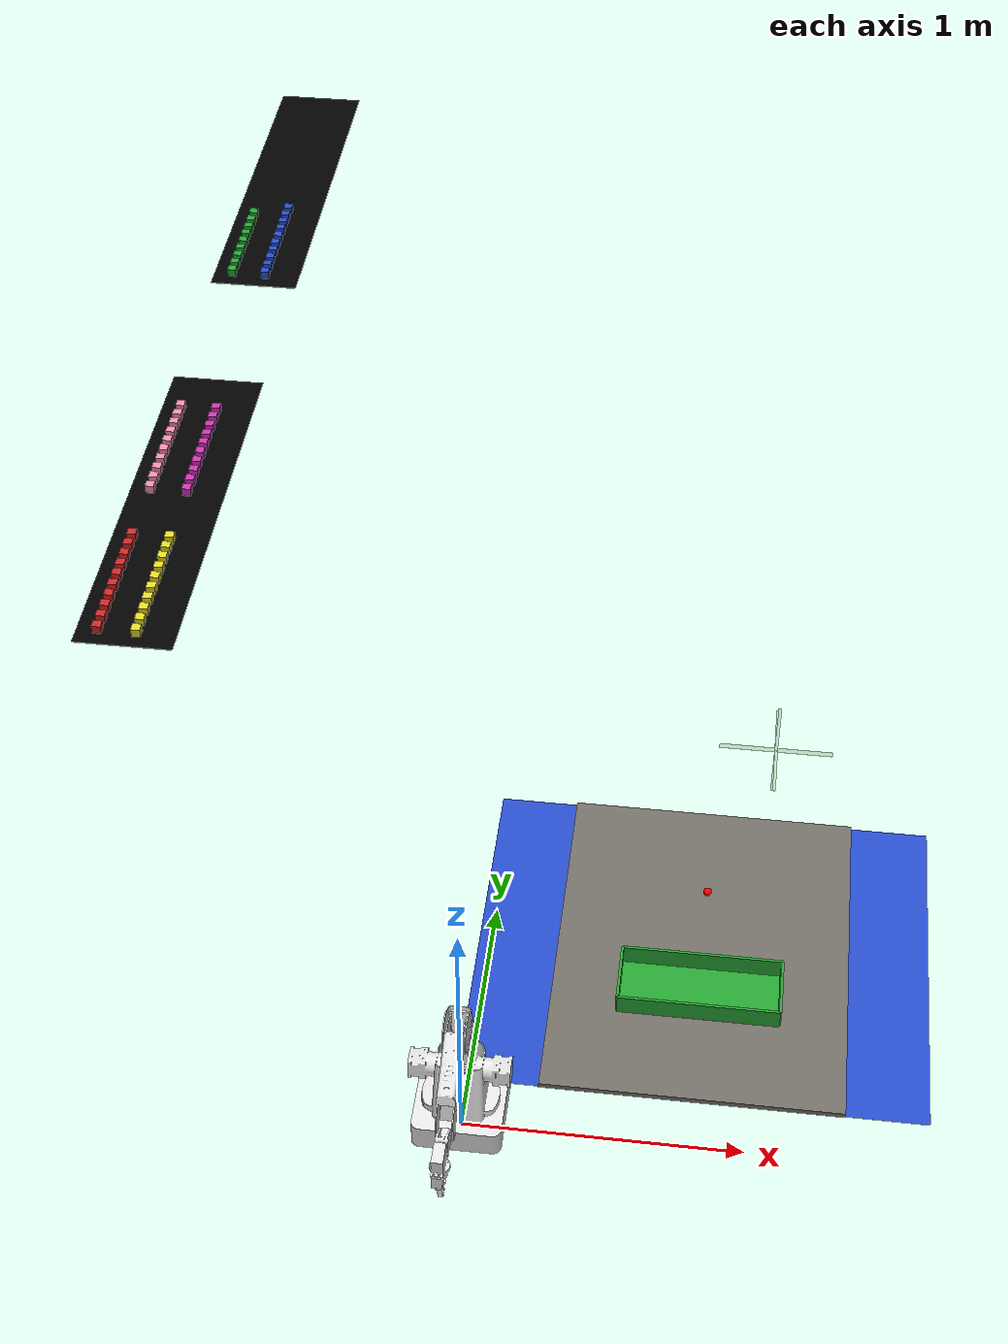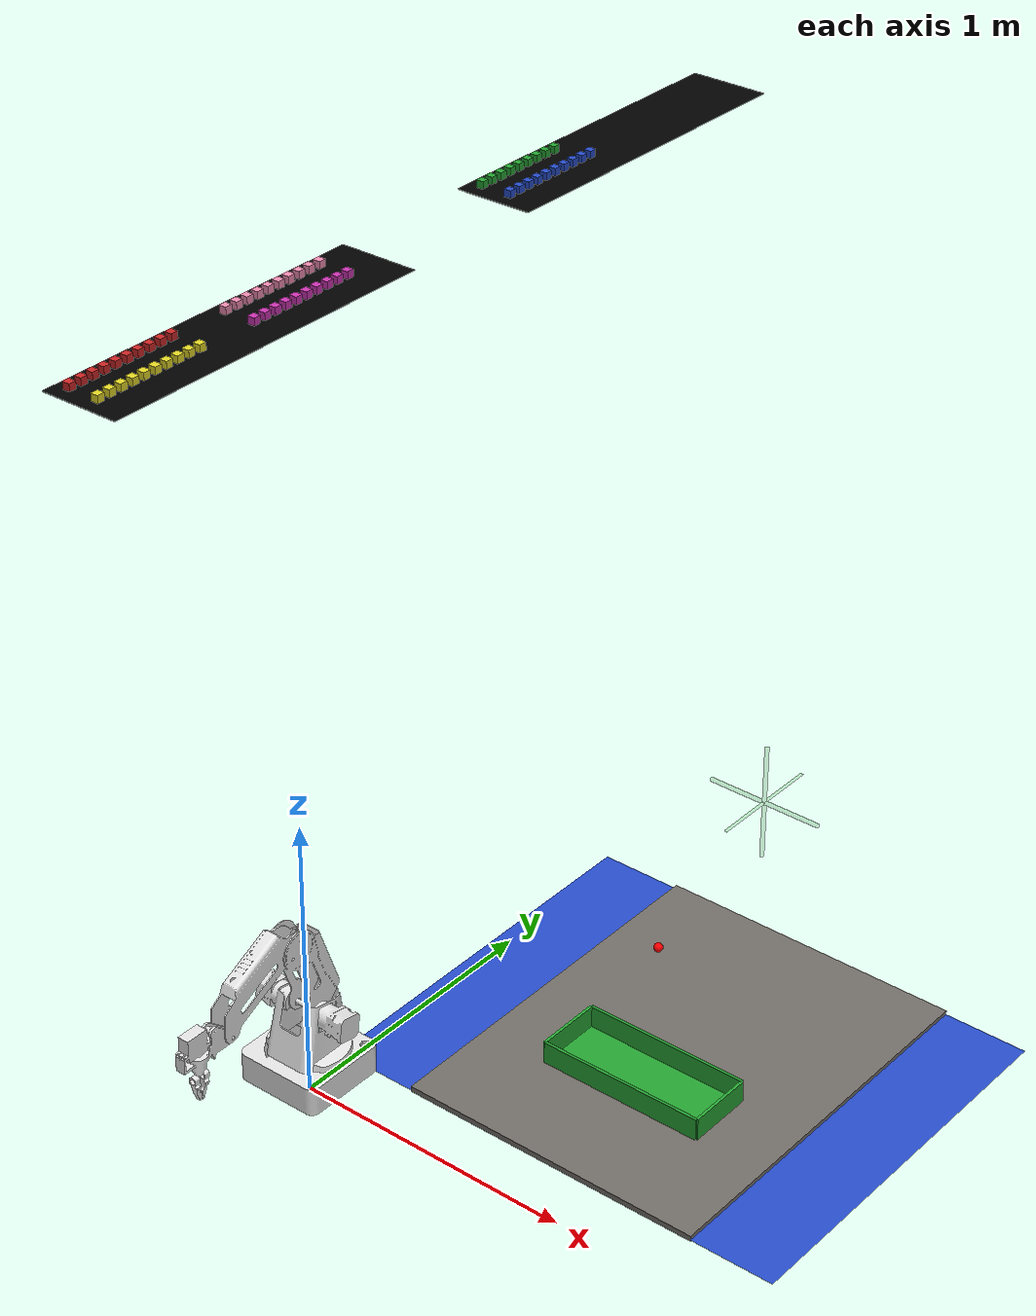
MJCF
<?xml version="1.0" encoding="utf-8"?>
<mujoco>
	<compiler angle="radian" coordinate="local" meshdir="../stls/dobot" texturedir="../textures"></compiler>
	<option timestep="0.002">
		<flag warmstart="enable"></flag>
	</option>
	<visual>
		<quality shadowsize="4096"></quality>
	</visual>

	<size njmax="8500" nconmax="4500"></size>

	<include file="shared_pick.xml"></include>

	<worldbody>

		<include file="base.xml"></include>

		<include file="robot_pick.xml"></include>

		<body name="object0" pos="0.025 0.025 0.025">
			<joint name="object0:joint" type="free" damping="0.01"></joint>
			<inertial diaginertia="5.2869 5.2236 5.9868" mass="0.8" pos="0 0 0"></inertial>
			<geom size="0.0145 0.0145 0.0145" type="box" condim="4" name="object0" material="blue_block_mat" mass="0.8" ></geom>
			<site name="site:object0" pos="0 0 0" size="0.012 0.012 0.012" rgba="1 0 0 1" type="sphere"></site>
		</body>

		<include file="clutter.xml"></include>

	</worldbody>

	<actuator>
		<position ctrllimited="true" ctrlrange="0 0.025" joint="dobot:r_gripper_joint" kp="30000" name="dobot:r_gripper_joint"></position>
		<position ctrllimited="true" ctrlrange="-0.025 0" joint="dobot:l_gripper_joint" kp="30000" name="dobot:l_gripper_joint"></position>
	</actuator>
</mujoco>

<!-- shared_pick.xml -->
<mujoco>
    <asset>
        <texture type="skybox" builtin="gradient" rgb1="0 0 0" rgb2="0.5 0.5 1" width="32" height="32"></texture>
        <texture name="texture_block" file="block.png" gridsize="3 4" gridlayout=".U..LFRB.D.."></texture>
        <texture name="red_block" file="block_red.png" gridsize="3 4" gridlayout=".U..LFRB.D.."></texture>
        <texture name="yellow_block" file="block_yellow.png" gridsize="3 4" gridlayout=".U..LFRB.D.."></texture>
        <texture name="green_block" file="block_green.png" gridsize="3 4" gridlayout=".U..LFRB.D.."></texture>
        <texture name="blue_block" file="block_blue.png" gridsize="3 4" gridlayout=".U..LFRB.D.."></texture>
        <texture name="pink_block" file="block_pink.png" gridsize="3 4" gridlayout=".U..LFRB.D.."></texture>
        <texture name="magenta_block" file="block_magenta.png" gridsize="3 4" gridlayout=".U..LFRB.D.."></texture>
        <texture name="dark_blue_block" file="block_dark_blue.png" gridsize="3 4" gridlayout=".U..LFRB.D.."></texture>
        <texture name="dark_green_block" file="block_dark_green.png" gridsize="3 4" gridlayout=".U..LFRB.D.."></texture>
        <texture name="arm_tex" file="arm.png" type="2d"></texture>
        <texture name="base_tex" file="base.png" type="2d"></texture>
        <texture name="base_blue_tex" file="base_blue.png" type="2d"></texture>
        <texture name="base_green_tex" file="base_green.png" type="2d"></texture>
        <texture name="gripper_tex" file="gripper.png" type="2d"></texture>

        <material name="table_mat" specular="0" shininess="0.5" reflectance="0" rgba="0.6 0.6 0.6 1" texture="base_tex"></material>
        <material name="floor_mat" specular="0" shininess="0.5" reflectance="0" rgba="1 1 1 1" texture="base_blue_tex"></material>
        <material name="tray_mat" specular="0" shininess="0.5" reflectance="0" rgba="1 1 1 1" texture="base_green_tex"></material>
        <material name="block_mat" specular="0" shininess="0.5" reflectance="0" rgba="1 1 1 1" texture="texture_block"></material>
        <material name="red_block_mat" specular="0" shininess="0.5" reflectance="0" rgba="1 1 1 1" texture="red_block"></material>
        <material name="yellow_block_mat" specular="0" shininess="0.5" reflectance="0" rgba="1 1 1 1" texture="yellow_block"></material>
        <material name="green_block_mat" specular="0" shininess="0.5" reflectance="0" rgba="1 1 1 1" texture="green_block"></material>
        <material name="blue_block_mat" specular="0" shininess="0.5" reflectance="0" rgba="1 1 1 1" texture="blue_block"></material>
        <material name="dark_blue_block_mat" specular="0" shininess="0.5" reflectance="0" rgba="1 1 1 1" texture="dark_blue_block"></material>
        <material name="dark_green_block_mat" specular="0" shininess="0.5" reflectance="0" rgba="1 1 1 1" texture="dark_green_block"></material>
        <material name="pink_block_mat" specular="0" shininess="0.5" reflectance="0" rgba="1 1 1 1" texture="pink_block"></material>
        <material name="magenta_block_mat" specular="0" shininess="0.5" reflectance="0" rgba="1 1 1 1" texture="magenta_block"></material>
        <material name="puck_mat" specular="0" shininess="0.5" reflectance="0" rgba="0.2 0.2 0.2 1" texture="base_tex"></material>
        <material name="dobot_mat" shininess="0.03" specular="0.4" rgba ="1 1 1 0"></material>
        <material name="arm_mat" shininess="0.03" specular="0.4" texture="arm_tex"></material>
        <material name="gripper_mat" shininess="0.03" specular="0.4" texture="gripper_tex"></material>

        <mesh file="fpart1.stl" name="dobot:rear_arm_link" scale="0.002 0.002 0.002"></mesh>
		<mesh file="fpart2.stl" name="dobot:front_arm_link" scale="0.002 0.002 0.002"></mesh>
		<mesh file="fpart3.stl" name="dobot:lift_link" scale="0.002 0.002 0.002"></mesh>
		<mesh file="fpart4.stl" name="dobot:base_link" scale="0.002 0.002 0.002"></mesh>
        <mesh file="gripper_base.stl" name="dobot:gripper_link" scale="0.002 0.002 0.002"></mesh>
		<mesh file="leftArm.stl" name="dobot:l_gripper_link" scale="0.002 0.002 0.002"></mesh>
		<mesh file="rightArm.stl" name="dobot:r_gripper_link" scale="0.002 0.002 0.002"></mesh>

    </asset>

    <equality>
        <weld body1="dobot:mocap" body2="dobot:gripper_link" solimp="0.9 0.95 0.001" solref="0.02 1"></weld>
    </equality>

    <default>
        <default class="dobot:fetch">
            <geom margin="0.001" material="dobot_mat" rgba="1 1 1 1" solimp="0.99 0.99 0.01" solref="0.01 1" type="mesh" user="0" group="1"></geom>
            <joint armature="1" damping="50" frictionloss="0" stiffness="0"></joint>

            <default class="dobot:fetchGripper">
                <geom condim="4" margin="0.001" type="box" user="0" rgba="0.356 0.361 0.376 1.0"></geom>
                <joint armature="100" damping="1000" limited="true" solimplimit="0.99 0.999 0.01" solreflimit="0.01 1" type="slide"></joint>
            </default>

            <default class="dobot:white">
                <geom rgba="0.9 0.9 0.9 1.0"></geom>
            </default>
            <default class="dobot:black">
                <geom rgba="0.2 0.2 0.2 1.0"></geom>
            </default>
        </default>
    </default>
</mujoco>

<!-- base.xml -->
<mujoco>
    <geom name="floor0" pos="0.8 0.9 0" size="0.85 0.70 1" type="plane" condim="3" material="floor_mat"></geom>
    <body name="floor0" pos="0.8 0.75 0">
        <site name="target0" pos="0 0 0.5" size="0.015" rgba="1 0 0 1" type="sphere"></site>
        <body pos="0 0.15 0" name="table0">
            <geom name="table0" size="0.55 0.7 0.01" type="box" mass="2000" material="table_mat"></geom>
            <body name="tray" pos = "0 -0.215 0.01">
                <geom name="tray_base" size="0.300 0.120 0.001" type="box" mass="300" material="tray_mat"></geom>
                <geom size="0.300 0.005 0.055" type="box" mass="300" pos="0 0.120 0.025" material="tray_mat"></geom>
                <geom size="0.300 0.005 0.055" type="box" mass="300" pos="0 -0.120 0.025" material="tray_mat"></geom>
                <geom size="0.005 0.120 0.055" type="box" mass="300" pos="0.300 0 0.025" material="tray_mat"></geom>
                <geom size="0.005 0.120 0.055" type="box" mass="300" pos="-0.300 0 0.025" material="tray_mat"></geom>
            </body>
            <camera euler="0.78 0 0" fovy="40" name="camera0" pos="0 -1 1" mode="targetbody" target="tray"></camera>
        </body>
    </body>
    <light directional="false" ambient="0.2 0.2 0.2" diffuse="0.8 0.8 0.8" specular="0.3 0.3 0.3" castshadow="false" pos="0.8 0.9 3" name="light0"></light>

</mujoco>

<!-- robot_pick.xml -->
<mujoco>
	<body mocap="true" name="dobot:mocap" pos="1 1 1">
		<geom conaffinity="0" contype="0" pos="0 0 0" rgba="0 0.5 0 0.2" size="0.005 0.005 0.005" type="box"></geom>
		<geom conaffinity="0" contype="0" pos="0 0 0" rgba="0 0.5 0 0.2" size="0.2 0.005 0.005" type="box"></geom>
		<geom conaffinity="0" contype="0" pos="0 0 0" rgba="0 0.5 0 0.2" size="0.005 0.2 0.001" type="box"></geom>
		<geom conaffinity="0" contype="0" pos="0 0 0" rgba="0 0.5 0 0.2" size="0.005 0.005 0.2" type="box"></geom>

	</body>
	<body childclass="dobot:fetch" name="dobot:base_link" pos="0 0 0.1" euler="0 0 0">
		<joint armature="0.0001" axis="1 0 0" damping="1e+11" name="dobot:slide0" pos="0 0 0" type="slide"></joint>
		<joint armature="0.0001" axis="0 1 0" damping="1e+11" name="dobot:slide1" pos="0 0 0" type="slide"></joint>
		<joint armature="0.0001" axis="0 0 1" damping="1e+11" name="dobot:slide2" pos="0 0 0" type="slide"></joint>
			<inertial diaginertia="1.2869 1.2236 0.9868" mass="1.5" pos="0 0 0"></inertial>
			<geom mesh="dobot:base_link" name="dobot:base_link" material="arm_mat" class="dobot:white"></geom>
			<body name="dobot:lift_link" pos="0 0 0.066" euler="0 0 0">
				<inertial diaginertia="1.2869 1.2236 0.9868" mass="0.5" pos="0 0 0"></inertial>
				<geom mesh="dobot:lift_link" name="dobot:lift_link" material="arm_mat" class="dobot:white"></geom>
				<joint name="dobot:base_pan" type="hinge" pos="0 0 0" axis="0 0 1" range="-1.57 1.57" limited="true"/>
				<body name="dobot:rear_arm_link" pos="0 0 0.16" euler="0 0 0">
					<inertial diaginertia="1.2869 1.2236 0.9868" mass="0.85" pos="0 0 0" ></inertial>
					<geom mesh="dobot:rear_arm_link" name="dobot:rear_arm_link" pos = "0 0 0" material="arm_mat" class="dobot:white"></geom>
					<joint name="dobot:base_tilt" type="hinge" pos="0 0 0" axis="1 0 0" range="0 1.4835" limited="true"/>
					<body name="dobot:front_arm_link" pos="0 -0.098 0.246" euler="0 0 0">
						<inertial diaginertia="1.2869 1.2236 0.9868" mass="0.85" pos="0 0 0"></inertial>
						<geom mesh="dobot:front_arm_link" name="dobot:front_arm_link" pos = "0 0 0" material="arm_mat" class="dobot:white"></geom>
						<joint name="dobot:elbow_flex" type="hinge" pos="0 0 0" axis="1 0 0" range="-1.658 0.174" limited="true"/>
						<body name="dobot:gripper_link" pos="0 -0.26 -0.136" euler="0 0 0">
							<inertial diaginertia="1.2869 1.2236 0.9868" mass="0.3294" pos="0 0 0"></inertial>
							<geom mesh="dobot:gripper_link" name="dobot:gripper_link" pos = "0 0 0" material="gripper_mat" class="dobot:white"></geom>
							<joint name="dobot:wrist_flex" type="hinge" pos="0 0 0" axis="1 0 0"/>
							<body name="dobot:gripper">
								<inertial diaginertia="1.2869 1.2236 0.9868" mass="0.1" pos="0 0 0"></inertial>
								<joint name="dobot:gripper_rot" type="hinge" pos="0 -0.123 -0.12" axis="0 0 1"/>
								<site name="dobot:grip" pos="0 -0.123 -0.153" rgba="0 0 0 0" size="0.02 0.02 0.02"></site>
								<body childclass="dobot:fetchGripper" name="dobot:l_gripper_link" pos="0 -0.1425 -0.09" euler="0 0 0">
									<inertial diaginertia="1.2869 1.2236 0.9868" mass="0.3294" pos="0 0 0"></inertial>
									<geom mesh="dobot:l_gripper_link" name="dobot:l_gripper_link" pos = "0 0 0" material="gripper_mat" class="dobot:white"></geom>
									<joint name="dobot:l_gripper_joint" type="slide" axis="0 1 0" limited="true" range="-0.025 0"/>
								</body>
								<body childclass="dobot:fetchGripper" name="dobot:r_gripper_link" pos="0 -0.1025 -0.09" euler="0 0 0">
									<inertial diaginertia="1.2869 1.2236 0.9868" mass="0.3294" pos="0 0 0"></inertial>
									<geom mesh="dobot:r_gripper_link" name="dobot:r_gripper_link" pos = "0 0 0" material="gripper_mat" class="dobot:white"></geom>
									<joint name="dobot:r_gripper_joint" type="slide" axis="0 1 0" limited="true" range = "0 0.025"/>
								</body>
							</body>
						</body>
					</body>
				</body>
			</body>
		</body>

</mujoco>

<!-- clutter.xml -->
<mujoco>
		<body pos = "-1.0625 0.9 2">
			<geom size="0.16 0.70 0.001" type="box" mass="300" rgba="0 0 0 1"></geom>
		</body>
		<body pos = "-1.0625 2.9 2">
			<geom size="0.16 0.70 0.001" type="box" mass="300" rgba="0 0 0 1"></geom>
		</body>
        <body name="object1" pos="-1.025 0.250 2.025">
			<joint name="object1:joint" type="free" damping="0.01"></joint>
			<geom size="0.0145 0.0145 0.0145" type="box" condim="3" name="object1" material="yellow_block_mat" mass="0.8" ></geom>
            <inertial diaginertia="5.2869 5.2236 5.9868" mass="0.8" pos="0 0 0"></inertial>
			<site name="site:object1" pos="0 0 0" size="0.0125 0.0125 0.0125" rgba="1 0 0 1" type="sphere"></site>
		</body>
		<body name="object2" pos="-1.025 0.300 2.025">
			<joint name="object2:joint" type="free" damping="0.01"></joint>
			<geom size="0.0145 0.0145 0.0145" type="box" condim="3" name="object2" material="yellow_block_mat" mass="0.8" ></geom>
            <inertial diaginertia="5.2869 5.2236 5.9868" mass="0.8" pos="0 0 0"></inertial>
			<site name="site:object2" pos="0 0 0" size="0.0125 0.0125 0.0125" rgba="1 0 0 1" type="sphere"></site>
		</body>
		<body name="object3" pos="-1.025 0.350 2.025">
			<joint name="object3:joint" type="free" damping="0.01"></joint>
			<geom size="0.0145 0.0145 0.0145" type="box" condim="3" name="object3" material="yellow_block_mat" mass="0.8" ></geom>
            <inertial diaginertia="5.2869 5.2236 5.9868" mass="0.8" pos="0 0 0"></inertial>
			<site name="site:object3" pos="0 0 0" size="0.0125 0.0125 0.0125" rgba="1 0 0 1" type="sphere"></site>
		</body>
		<body name="object4" pos="-1.025 0.400 2.025">
			<joint name="object4:joint" type="free" damping="0.01"></joint>
			<geom size="0.0145 0.0145 0.0145" type="box" condim="3" name="object4" material="yellow_block_mat" mass="0.8" ></geom>
            <inertial diaginertia="5.2869 5.2236 5.9868" mass="0.8" pos="0 0 0"></inertial>
			<site name="site:object4" pos="0 0 0" size="0.0125 0.0125 0.0125" rgba="1 0 0 1" type="sphere"></site>
		</body>
		<body name="object5" pos="-1.025 0.450 2.025">
			<joint name="object5:joint" type="free" damping="0.01"></joint>
			<geom size="0.0145 0.0145 0.0145" type="box" condim="3" name="object5" material="yellow_block_mat" mass="0.8" ></geom>
            <inertial diaginertia="5.2869 5.2236 5.9868" mass="0.8" pos="0 0 0"></inertial>
			<site name="site:object5" pos="0 0 0" size="0.0125 0.0125 0.0125" rgba="1 0 0 1" type="sphere"></site>
		</body>
		<body name="object6" pos="-1.025 0.500 2.025">
			<joint name="object6:joint" type="free" damping="0.01"></joint>
			<geom size="0.0145 0.0145 0.0145" type="box" condim="3" name="object6" material="yellow_block_mat" mass="0.8" ></geom>
            <inertial diaginertia="5.2869 5.2236 5.9868" mass="0.8" pos="0 0 0"></inertial>
			<site name="site:object6" pos="0 0 0" size="0.0125 0.0125 0.0125" rgba="1 0 0 1" type="sphere"></site>
		</body>
		<body name="object7" pos="-1.025 0.550 2.025">
			<joint name="object7:joint" type="free" damping="0.01"></joint>
			<geom size="0.0145 0.0145 0.0145" type="box" condim="3" name="object7" material="yellow_block_mat" mass="0.8" ></geom>
            <inertial diaginertia="5.2869 5.2236 5.9868" mass="0.8" pos="0 0 0"></inertial>
			<site name="site:object7" pos="0 0 0" size="0.0125 0.0125 0.0125" rgba="1 0 0 1" type="sphere"></site>
		</body>
		<body name="object8" pos="-1.025 0.600 2.025">
			<joint name="object8:joint" type="free" damping="0.01"></joint>
			<geom size="0.0145 0.0145 0.0145" type="box" condim="3" name="object8" material="yellow_block_mat" mass="0.8" ></geom>
            <inertial diaginertia="5.2869 5.2236 5.9868" mass="0.8" pos="0 0 0"></inertial>
			<site name="site:object8" pos="0 0 0" size="0.0125 0.0125 0.0125" rgba="1 0 0 1" type="sphere"></site>
		</body>
		<body name="object9" pos="-1.025 0.650 2.025">
			<joint name="object9:joint" type="free" damping="0.01"></joint>
			<geom size="0.0145 0.0145 0.0145" type="box" condim="3" name="object9" material="yellow_block_mat" mass="0.8" ></geom>
            <inertial diaginertia="5.2869 5.2236 5.9868" mass="0.8" pos="0 0 0"></inertial>
			<site name="site:object9" pos="0 0 0" size="0.0125 0.0125 0.0125" rgba="1 0 0 1" type="sphere"></site>
		</body>
		<body name="object10" pos="-1.025 0.700 2.025">
			<joint name="object10:joint" type="free" damping="0.01"></joint>
			<geom size="0.0145 0.0145 0.0145" type="box" condim="3" name="object10" material="yellow_block_mat" mass="0.8" ></geom>
            <inertial diaginertia="5.2869 5.2236 5.9868" mass="0.8" pos="0 0 0"></inertial>
			<site name="site:object10" pos="0 0 0" size="0.0125 0.0125 0.0125" rgba="1 0 0 1" type="sphere"></site>
		</body>
        <body name="object11" pos="-1.15 0.250 2.025">
			<joint name="object11:joint" type="free" damping="0.01"></joint>
			<geom size="0.0145 0.0145 0.0145" type="box" condim="3" name="object11" material="red_block_mat" mass="0.8" ></geom>
            <inertial diaginertia="5.2869 5.2236 5.9868" mass="0.8" pos="0 0 0"></inertial>
			<site name="site:object11" pos="0 0 0" size="0.0125 0.0125 0.0125" rgba="1 0 0 1" type="sphere"></site>
		</body>
		<body name="object12" pos="-1.15 0.300 2.025">
			<joint name="object12:joint" type="free" damping="0.01"></joint>
			<geom size="0.0145 0.0145 0.0145" type="box" condim="3" name="object12" material="red_block_mat" mass="0.8" ></geom>
            <inertial diaginertia="5.2869 5.2236 5.9868" mass="0.8" pos="0 0 0"></inertial>
			<site name="site:object12" pos="0 0 0" size="0.0125 0.0125 0.0125" rgba="1 0 0 1" type="sphere"></site>
		</body>
		<body name="object13" pos="-1.15 0.350 2.025">
			<joint name="object13:joint" type="free" damping="0.01"></joint>
			<geom size="0.0145 0.0145 0.0145" type="box" condim="3" name="object13" material="red_block_mat" mass="0.8" ></geom>
            <inertial diaginertia="5.2869 5.2236 5.9868" mass="0.8" pos="0 0 0"></inertial>
			<site name="site:object13" pos="0 0 0" size="0.0125 0.0125 0.0125" rgba="1 0 0 1" type="sphere"></site>
		</body>
		<body name="object14" pos="-1.15 0.400 2.025">
			<joint name="object14:joint" type="free" damping="0.01"></joint>
			<geom size="0.0145 0.0145 0.0145" type="box" condim="3" name="object14" material="red_block_mat" mass="0.8" ></geom>
            <inertial diaginertia="5.2869 5.2236 5.9868" mass="0.8" pos="0 0 0"></inertial>
			<site name="site:object14" pos="0 0 0" size="0.0125 0.0125 0.0125" rgba="1 0 0 1" type="sphere"></site>
		</body>
		<body name="object15" pos="-1.15 0.450 2.025">
			<joint name="object15:joint" type="free" damping="0.01"></joint>
			<geom size="0.0145 0.0145 0.0145" type="box" condim="3" name="object15" material="red_block_mat" mass="0.8" ></geom>
            <inertial diaginertia="5.2869 5.2236 5.9868" mass="0.8" pos="0 0 0"></inertial>
			<site name="site:object15" pos="0 0 0" size="0.0125 0.0125 0.0125" rgba="1 0 0 1" type="sphere"></site>
		</body>
		<body name="object16" pos="-1.15 0.500 2.025">
			<joint name="object16:joint" type="free" damping="0.01"></joint>
			<geom size="0.0145 0.0145 0.0145" type="box" condim="3" name="object16" material="red_block_mat" mass="0.8" ></geom>
            <inertial diaginertia="5.2869 5.2236 5.9868" mass="0.8" pos="0 0 0"></inertial>
			<site name="site:object16" pos="0 0 0" size="0.0125 0.0125 0.0125" rgba="1 0 0 1" type="sphere"></site>
		</body>
		<body name="object17" pos="-1.15 0.550 2.025">
			<joint name="object17:joint" type="free" damping="0.01"></joint>
			<geom size="0.0145 0.0145 0.0145" type="box" condim="3" name="object17" material="red_block_mat" mass="0.8" ></geom>
            <inertial diaginertia="5.2869 5.2236 5.9868" mass="0.8" pos="0 0 0"></inertial>
			<site name="site:object17" pos="0 0 0" size="0.0125 0.0125 0.0125" rgba="1 0 0 1" type="sphere"></site>
		</body>
		<body name="object18" pos="-1.15 0.600 2.025">
			<joint name="object18:joint" type="free" damping="0.01"></joint>
			<geom size="0.0145 0.0145 0.0145" type="box" condim="3" name="object18" material="red_block_mat" mass="0.8" ></geom>
            <inertial diaginertia="5.2869 5.2236 5.9868" mass="0.8" pos="0 0 0"></inertial>
			<site name="site:object18" pos="0 0 0" size="0.0125 0.0125 0.0125" rgba="1 0 0 1" type="sphere"></site>
		</body>
		<body name="object19" pos="-1.15 0.650 2.025">
			<joint name="object19:joint" type="free" damping="0.01"></joint>
			<geom size="0.0145 0.0145 0.0145" type="box" condim="3" name="object19" material="red_block_mat" mass="0.8" ></geom>
            <inertial diaginertia="5.2869 5.2236 5.9868" mass="0.8" pos="0 0 0"></inertial>
			<site name="site:object19" pos="0 0 0" size="0.0125 0.0125 0.0125" rgba="1 0 0 1" type="sphere"></site>
		</body>
		<body name="object20" pos="-1.15 .700 2.025">
			<joint name="object20:joint" type="free" damping="0.01"></joint>
			<geom size="0.0145 0.0145 0.0145" type="box" condim="3" name="object20" material="red_block_mat" mass="0.8" ></geom>
            <inertial diaginertia="5.2869 5.2236 5.9868" mass="0.8" pos="0 0 0"></inertial>
			<site name="site:object20" pos="0 0 0" size="0.0125 0.0125 0.0125" rgba="1 0 0 1" type="sphere"></site>
		</body>
        <body name="object21" pos="-1.025 0.950 2.025">
			<joint name="object21:joint" type="free" damping="0.01"></joint>
			<geom size="0.0145 0.0145 0.0145" type="box" condim="3" name="object21" material="magenta_block_mat" mass="0.8" ></geom>
            <inertial diaginertia="5.2869 5.2236 5.9868" mass="0.8" pos="0 0 0"></inertial>
			<site name="site:object21" pos="0 0 0" size="0.0125 0.0125 0.0125" rgba="1 0 0 1" type="sphere"></site>
		</body>
		<body name="object22" pos="-1.025 1.000 2.025">
			<joint name="object22:joint" type="free" damping="0.01"></joint>
			<geom size="0.0145 0.0145 0.0145" type="box" condim="3" name="object22" material="magenta_block_mat" mass="0.8" ></geom>
            <inertial diaginertia="5.2869 5.2236 5.9868" mass="0.8" pos="0 0 0"></inertial>
			<site name="site:object22" pos="0 0 0" size="0.0125 0.0125 0.0125" rgba="1 0 0 1" type="sphere"></site>
		</body>
		<body name="object23" pos="-1.025 1.050 2.025">
			<joint name="object23:joint" type="free" damping="0.01"></joint>
			<geom size="0.0145 0.0145 0.0145" type="box" condim="3" name="object23" material="magenta_block_mat" mass="0.8" ></geom>
            <inertial diaginertia="5.2869 5.2236 5.9868" mass="0.8" pos="0 0 0"></inertial>
			<site name="site:object23" pos="0 0 0" size="0.0125 0.0125 0.0125" rgba="1 0 0 1" type="sphere"></site>
		</body>
		<body name="object24" pos="-1.025 1.100 2.025">
			<joint name="object24:joint" type="free" damping="0.01"></joint>
			<geom size="0.0145 0.0145 0.0145" type="box" condim="3" name="object24" material="magenta_block_mat" mass="0.8" ></geom>
            <inertial diaginertia="5.2869 5.2236 5.9868" mass="0.8" pos="0 0 0"></inertial>
			<site name="site:object24" pos="0 0 0" size="0.0125 0.0125 0.0125" rgba="1 0 0 1" type="sphere"></site>
		</body>
		<body name="object25" pos="-1.025 1.150 2.025">
			<joint name="object25:joint" type="free" damping="0.01"></joint>
			<geom size="0.0145 0.0145 0.0145" type="box" condim="3" name="object25" material="magenta_block_mat" mass="0.8" ></geom>
            <inertial diaginertia="5.2869 5.2236 5.9868" mass="0.8" pos="0 0 0"></inertial>
			<site name="site:object25" pos="0 0 0" size="0.0125 0.0125 0.0125" rgba="1 0 0 1" type="sphere"></site>
		</body>
		<body name="object26" pos="-1.025 1.200 2.025">
			<joint name="object26:joint" type="free" damping="0.01"></joint>
			<geom size="0.0145 0.0145 0.0145" type="box" condim="3" name="object26" material="magenta_block_mat" mass="0.8" ></geom>
            <inertial diaginertia="5.2869 5.2236 5.9868" mass="0.8" pos="0 0 0"></inertial>
			<site name="site:object26" pos="0 0 0" size="0.0125 0.0125 0.0125" rgba="1 0 0 1" type="sphere"></site>
		</body>
		<body name="object27" pos="-1.025 1.250 2.025">
			<joint name="object27:joint" type="free" damping="0.01"></joint>
			<geom size="0.0145 0.0145 0.0145" type="box" condim="3" name="object27" material="magenta_block_mat" mass="0.8" ></geom>
            <inertial diaginertia="5.2869 5.2236 5.9868" mass="0.8" pos="0 0 0"></inertial>
			<site name="site:object27" pos="0 0 0" size="0.0125 0.0125 0.0125" rgba="1 0 0 1" type="sphere"></site>
		</body>
		<body name="object28" pos="-1.025 1.300 2.025">
			<joint name="object28:joint" type="free" damping="0.01"></joint>
			<geom size="0.0145 0.0145 0.0145" type="box" condim="3" name="object28" material="magenta_block_mat" mass="0.8" ></geom>
            <inertial diaginertia="5.2869 5.2236 5.9868" mass="0.8" pos="0 0 0"></inertial>
			<site name="site:object28" pos="0 0 0" size="0.0125 0.0125 0.0125" rgba="1 0 0 1" type="sphere"></site>
		</body>
		<body name="object29" pos="-1.025 1.350 2.025">
			<joint name="object29:joint" type="free" damping="0.01"></joint>
			<geom size="0.0145 0.0145 0.0145" type="box" condim="3" name="object29" material="magenta_block_mat" mass="0.8" ></geom>
            <inertial diaginertia="5.2869 5.2236 5.9868" mass="0.8" pos="0 0 0"></inertial>
			<site name="site:object29" pos="0 0 0" size="0.0125 0.0125 0.0125" rgba="1 0 0 1" type="sphere"></site>
		</body>
		<body name="object30" pos="-1.025 1.400 2.025">
			<joint name="object30:joint" type="free" damping="0.01"></joint>
			<geom size="0.0145 0.0145 0.0145" type="box" condim="3" name="object30" material="magenta_block_mat" mass="0.8" ></geom>
            <inertial diaginertia="5.2869 5.2236 5.9868" mass="0.8" pos="0 0 0"></inertial>
			<site name="site:object30" pos="0 0 0" size="0.0125 0.0125 0.0125" rgba="1 0 0 1" type="sphere"></site>
		</body>
        <body name="object31" pos="-1.15 0.950 2.025">
			<joint name="object31:joint" type="free" damping="0.01"></joint>
			<geom size="0.0145 0.0145 0.0145" type="box" condim="3" name="object31" material="pink_block_mat" mass="0.8" ></geom>
            <inertial diaginertia="5.2869 5.2236 5.9868" mass="0.8" pos="0 0 0"></inertial>
			<site name="site:object31" pos="0 0 0" size="0.0125 0.0125 0.0125" rgba="1 0 0 1" type="sphere"></site>
		</body>
		<body name="object32" pos="-1.15 1.000 2.025">
			<joint name="object32:joint" type="free" damping="0.01"></joint>
			<geom size="0.0145 0.0145 0.0145" type="box" condim="3" name="object32" material="pink_block_mat" mass="0.8" ></geom>
            <inertial diaginertia="5.2869 5.2236 5.9868" mass="0.8" pos="0 0 0"></inertial>
			<site name="site:object32" pos="0 0 0" size="0.0125 0.0125 0.0125" rgba="1 0 0 1" type="sphere"></site>
		</body>
		<body name="object33" pos="-1.15 1.050 2.025">
			<joint name="object33:joint" type="free" damping="0.01"></joint>
			<geom size="0.0145 0.0145 0.0145" type="box" condim="3" name="object33" material="pink_block_mat" mass="0.8" ></geom>
            <inertial diaginertia="5.2869 5.2236 5.9868" mass="0.8" pos="0 0 0"></inertial>
			<site name="site:object33" pos="0 0 0" size="0.0125 0.0125 0.0125" rgba="1 0 0 1" type="sphere"></site>
		</body>
		<body name="object34" pos="-1.15 1.100 2.025">
			<joint name="object34:joint" type="free" damping="0.01"></joint>
			<geom size="0.0145 0.0145 0.0145" type="box" condim="3" name="object34" material="pink_block_mat" mass="0.8" ></geom>
            <inertial diaginertia="5.2869 5.2236 5.9868" mass="0.8" pos="0 0 0"></inertial>
			<site name="site:object34" pos="0 0 0" size="0.0125 0.0125 0.0125" rgba="1 0 0 1" type="sphere"></site>
		</body>
		<body name="object35" pos="-1.15 1.150 2.025">
			<joint name="object35:joint" type="free" damping="0.01"></joint>
			<geom size="0.0145 0.0145 0.0145" type="box" condim="3" name="object35" material="pink_block_mat" mass="0.8" ></geom>
            <inertial diaginertia="5.2869 5.2236 5.9868" mass="0.8" pos="0 0 0"></inertial>
			<site name="site:object35" pos="0 0 0" size="0.0125 0.0125 0.0125" rgba="1 0 0 1" type="sphere"></site>
		</body>
		<body name="object36" pos="-1.15 1.200 2.025">
			<joint name="object36:joint" type="free" damping="0.01"></joint>
			<geom size="0.0145 0.0145 0.0145" type="box" condim="3" name="object36" material="pink_block_mat" mass="0.8" ></geom>
            <inertial diaginertia="5.2869 5.2236 5.9868" mass="0.8" pos="0 0 0"></inertial>
			<site name="site:object36" pos="0 0 0" size="0.0125 0.0125 0.0125" rgba="1 0 0 1" type="sphere"></site>
		</body>
		<body name="object37" pos="-1.15 1.250 2.025">
			<joint name="object37:joint" type="free" damping="0.01"></joint>
			<geom size="0.0145 0.0145 0.0145" type="box" condim="3" name="object37" material="pink_block_mat" mass="0.8" ></geom>
            <inertial diaginertia="5.2869 5.2236 5.9868" mass="0.8" pos="0 0 0"></inertial>
			<site name="site:object37" pos="0 0 0" size="0.0125 0.0125 0.0125" rgba="1 0 0 1" type="sphere"></site>
		</body>
		<body name="object38" pos="-1.15 1.300 2.025">
			<joint name="object38:joint" type="free" damping="0.01"></joint>
			<geom size="0.0145 0.0145 0.0145" type="box" condim="3" name="object38" material="pink_block_mat" mass="0.8" ></geom>
            <inertial diaginertia="5.2869 5.2236 5.9868" mass="0.8" pos="0 0 0"></inertial>
			<site name="site:object38" pos="0 0 0" size="0.0125 0.0125 0.0125" rgba="1 0 0 1" type="sphere"></site>
		</body>
		<body name="object39" pos="-1.15 1.350 2.025">
			<joint name="object39:joint" type="free" damping="0.01"></joint>
			<geom size="0.0145 0.0145 0.0145" type="box" condim="3" name="object39" material="pink_block_mat" mass="0.8" ></geom>
            <inertial diaginertia="5.2869 5.2236 5.9868" mass="0.8" pos="0 0 0"></inertial>
			<site name="site:object39" pos="0 0 0" size="0.0125 0.0125 0.0125" rgba="1 0 0 1" type="sphere"></site>
		</body>
		<body name="object40" pos="-1.15 1.400 2.025">
			<joint name="object40:joint" type="free" damping="0.01"></joint>
			<geom size="0.0145 0.0145 0.0145" type="box" condim="3" name="object40" material="pink_block_mat" mass="0.8" ></geom>
            <inertial diaginertia="5.2869 5.2236 5.9868" mass="0.8" pos="0 0 0"></inertial>
			<site name="site:object40" pos="0 0 0" size="0.0125 0.0125 0.0125" rgba="1 0 0 1" type="sphere"></site>
		</body>

		<!-- More blocks -->
        <body name="object41" pos="-1.025 2.250 2.025">
			<joint name="object41:joint" type="free" damping="0.01"></joint>
			<geom size="0.0145 0.0145 0.0145" type="box" condim="3" name="object41" material="dark_blue_block_mat" mass="0.8" ></geom>
            <inertial diaginertia="5.2869 5.2236 5.9868" mass="0.8" pos="0 0 0"></inertial>
			<site name="site:object41" pos="0 0 0" size="0.0125 0.0125 0.0125" rgba="1 0 0 1" type="sphere"></site>
		</body>
		<body name="object42" pos="-1.025 2.300 2.025">
			<joint name="object42:joint" type="free" damping="0.01"></joint>
			<geom size="0.0145 0.0145 0.0145" type="box" condim="3" name="object42" material="dark_blue_block_mat" mass="0.8" ></geom>
            <inertial diaginertia="5.2869 5.2236 5.9868" mass="0.8" pos="0 0 0"></inertial>
			<site name="site:object42" pos="0 0 0" size="0.0125 0.0125 0.0125" rgba="1 0 0 1" type="sphere"></site>
		</body>
		<body name="object43" pos="-1.025 2.350 2.025">
			<joint name="object43:joint" type="free" damping="0.01"></joint>
			<geom size="0.0145 0.0145 0.0145" type="box" condim="3" name="object43" material="dark_blue_block_mat" mass="0.8" ></geom>
            <inertial diaginertia="5.2869 5.2236 5.9868" mass="0.8" pos="0 0 0"></inertial>
			<site name="site:object43" pos="0 0 0" size="0.0125 0.0125 0.0125" rgba="1 0 0 1" type="sphere"></site>
		</body>
		<body name="object44" pos="-1.025 2.400 2.025">
			<joint name="object44:joint" type="free" damping="0.01"></joint>
			<geom size="0.0145 0.0145 0.0145" type="box" condim="3" name="object44" material="dark_blue_block_mat" mass="0.8" ></geom>
            <inertial diaginertia="5.2869 5.2236 5.9868" mass="0.8" pos="0 0 0"></inertial>
			<site name="site:object44" pos="0 0 0" size="0.0125 0.0125 0.0125" rgba="1 0 0 1" type="sphere"></site>
		</body>
		<body name="object45" pos="-1.025 2.450 2.025">
			<joint name="object45:joint" type="free" damping="0.01"></joint>
			<geom size="0.0145 0.0145 0.0145" type="box" condim="3" name="object45" material="dark_blue_block_mat" mass="0.8" ></geom>
            <inertial diaginertia="5.2869 5.2236 5.9868" mass="0.8" pos="0 0 0"></inertial>
			<site name="site:object45" pos="0 0 0" size="0.0125 0.0125 0.0125" rgba="1 0 0 1" type="sphere"></site>
		</body>
		<body name="object46" pos="-1.025 2.500 2.025">
			<joint name="object46:joint" type="free" damping="0.01"></joint>
			<geom size="0.0145 0.0145 0.0145" type="box" condim="3" name="object46" material="dark_blue_block_mat" mass="0.8" ></geom>
            <inertial diaginertia="5.2869 5.2236 5.9868" mass="0.8" pos="0 0 0"></inertial>
			<site name="site:object46" pos="0 0 0" size="0.0125 0.0125 0.0125" rgba="1 0 0 1" type="sphere"></site>
		</body>
		<body name="object47" pos="-1.025 2.550 2.025">
			<joint name="object47:joint" type="free" damping="0.01"></joint>
			<geom size="0.0145 0.0145 0.0145" type="box" condim="3" name="object47" material="dark_blue_block_mat" mass="0.8" ></geom>
            <inertial diaginertia="5.2869 5.2236 5.9868" mass="0.8" pos="0 0 0"></inertial>
			<site name="site:object47" pos="0 0 0" size="0.0125 0.0125 0.0125" rgba="1 0 0 1" type="sphere"></site>
		</body>
		<body name="object48" pos="-1.025 2.600 2.025">
			<joint name="object48:joint" type="free" damping="0.01"></joint>
			<geom size="0.0145 0.0145 0.0145" type="box" condim="3" name="object48" material="dark_blue_block_mat" mass="0.8" ></geom>
            <inertial diaginertia="5.2869 5.2236 5.9868" mass="0.8" pos="0 0 0"></inertial>
			<site name="site:object48" pos="0 0 0" size="0.0125 0.0125 0.0125" rgba="1 0 0 1" type="sphere"></site>
		</body>
		<body name="object49" pos="-1.025 2.650 2.025">
			<joint name="object49:joint" type="free" damping="0.01"></joint>
			<geom size="0.0145 0.0145 0.0145" type="box" condim="3" name="object49" material="dark_blue_block_mat" mass="0.8" ></geom>
            <inertial diaginertia="5.2869 5.2236 5.9868" mass="0.8" pos="0 0 0"></inertial>
			<site name="site:object49" pos="0 0 0" size="0.0125 0.0125 0.0125" rgba="1 0 0 1" type="sphere"></site>
		</body>
		<body name="object50" pos="-1.025 2.700 2.025">
			<joint name="object50:joint" type="free" damping="0.01"></joint>
			<geom size="0.0145 0.0145 0.0145" type="box" condim="3" name="object50" material="dark_blue_block_mat" mass="0.8" ></geom>
            <inertial diaginertia="5.2869 5.2236 5.9868" mass="0.8" pos="0 0 0"></inertial>
			<site name="site:object50" pos="0 0 0" size="0.0125 0.0125 0.0125" rgba="1 0 0 1" type="sphere"></site>
		</body>
        <body name="object51" pos="-1.15 2.250 2.025">
			<joint name="object51:joint" type="free" damping="0.01"></joint>
			<geom size="0.0145 0.0145 0.0145" type="box" condim="3" name="object51" material="dark_green_block_mat" mass="0.8" ></geom>
            <inertial diaginertia="5.2869 5.2236 5.9868" mass="0.8" pos="0 0 0"></inertial>
			<site name="site:object51" pos="0 0 0" size="0.0125 0.0125 0.0125" rgba="1 0 0 1" type="sphere"></site>
		</body>
		<body name="object52" pos="-1.15 2.300 2.025">
			<joint name="object52:joint" type="free" damping="0.01"></joint>
			<geom size="0.0145 0.0145 0.0145" type="box" condim="3" name="object52" material="dark_green_block_mat" mass="0.8" ></geom>
            <inertial diaginertia="5.2869 5.2236 5.9868" mass="0.8" pos="0 0 0"></inertial>
			<site name="site:object52" pos="0 0 0" size="0.0125 0.0125 0.0125" rgba="1 0 0 1" type="sphere"></site>
		</body>
		<body name="object53" pos="-1.15 2.350 2.025">
			<joint name="object53:joint" type="free" damping="0.01"></joint>
			<geom size="0.0145 0.0145 0.0145" type="box" condim="3" name="object53" material="dark_green_block_mat" mass="0.8" ></geom>
            <inertial diaginertia="5.2869 5.2236 5.9868" mass="0.8" pos="0 0 0"></inertial>
			<site name="site:object53" pos="0 0 0" size="0.0125 0.0125 0.0125" rgba="1 0 0 1" type="sphere"></site>
		</body>
		<body name="object54" pos="-1.15 2.400 2.025">
			<joint name="object54:joint" type="free" damping="0.01"></joint>
			<geom size="0.0145 0.0145 0.0145" type="box" condim="3" name="object54" material="dark_green_block_mat" mass="0.8" ></geom>
            <inertial diaginertia="5.2869 5.2236 5.9868" mass="0.8" pos="0 0 0"></inertial>
			<site name="site:object54" pos="0 0 0" size="0.0125 0.0125 0.0125" rgba="1 0 0 1" type="sphere"></site>
		</body>
		<body name="object55" pos="-1.15 2.450 2.025">
			<joint name="object55:joint" type="free" damping="0.01"></joint>
			<geom size="0.0145 0.0145 0.0145" type="box" condim="3" name="object55" material="dark_green_block_mat" mass="0.8" ></geom>
            <inertial diaginertia="5.2869 5.2236 5.9868" mass="0.8" pos="0 0 0"></inertial>
			<site name="site:object55" pos="0 0 0" size="0.0125 0.0125 0.0125" rgba="1 0 0 1" type="sphere"></site>
		</body>
		<body name="object56" pos="-1.15 2.500 2.025">
			<joint name="object56:joint" type="free" damping="0.01"></joint>
			<geom size="0.0145 0.0145 0.0145" type="box" condim="3" name="object56" material="dark_green_block_mat" mass="0.8" ></geom>
            <inertial diaginertia="5.2869 5.2236 5.9868" mass="0.8" pos="0 0 0"></inertial>
			<site name="site:object56" pos="0 0 0" size="0.0125 0.0125 0.0125" rgba="1 0 0 1" type="sphere"></site>
		</body>
		<body name="object57" pos="-1.15 2.550 2.025">
			<joint name="object57:joint" type="free" damping="0.01"></joint>
			<geom size="0.0145 0.0145 0.0145" type="box" condim="3" name="object57" material="dark_green_block_mat" mass="0.8" ></geom>
            <inertial diaginertia="5.2869 5.2236 5.9868" mass="0.8" pos="0 0 0"></inertial>
			<site name="site:object57" pos="0 0 0" size="0.0125 0.0125 0.0125" rgba="1 0 0 1" type="sphere"></site>
		</body>
		<body name="object58" pos="-1.15 2.600 2.025">
			<joint name="object58:joint" type="free" damping="0.01"></joint>
			<geom size="0.0145 0.0145 0.0145" type="box" condim="3" name="object58" material="dark_green_block_mat" mass="0.8" ></geom>
            <inertial diaginertia="5.2869 5.2236 5.9868" mass="0.8" pos="0 0 0"></inertial>
			<site name="site:object58" pos="0 0 0" size="0.0125 0.0125 0.0125" rgba="1 0 0 1" type="sphere"></site>
		</body>
		<body name="object59" pos="-1.15 2.650 2.025">
			<joint name="object59:joint" type="free" damping="0.01"></joint>
			<geom size="0.0145 0.0145 0.0145" type="box" condim="3" name="object59" material="dark_green_block_mat" mass="0.8" ></geom>
            <inertial diaginertia="5.2869 5.2236 5.9868" mass="0.8" pos="0 0 0"></inertial>
			<site name="site:object59" pos="0 0 0" size="0.0125 0.0125 0.0125" rgba="1 0 0 1" type="sphere"></site>
		</body>
		<body name="object60" pos="-1.15 .700 2.025">
			<joint name="object60:joint" type="free" damping="0.01"></joint>
			<geom size="0.0145 0.0145 0.0145" type="box" condim="3" name="object60" material="dark_green_block_mat" mass="0.8" ></geom>
            <inertial diaginertia="5.2869 5.2236 5.9868" mass="0.8" pos="0 0 0"></inertial>
			<site name="site:object60" pos="0 0 0" size="0.0125 0.0125 0.0125" rgba="1 0 0 1" type="sphere"></site>
		</body>

</mujoco>
